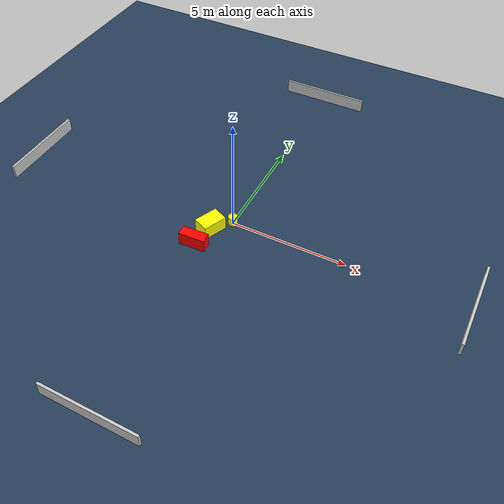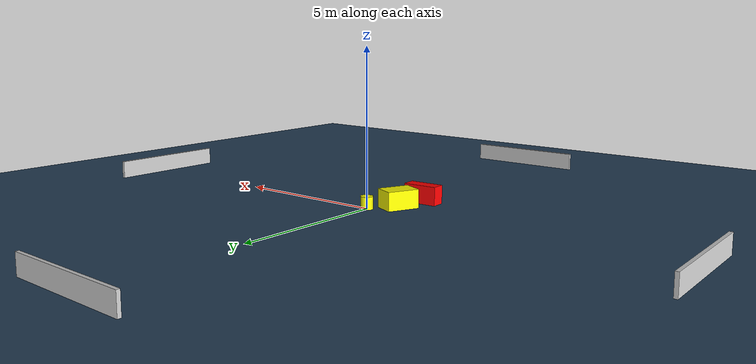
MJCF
<?xml version="1.0" ?>
<mujoco model="generated_environment">
  <option timestep="0.01" integrator="RK4" cone="elliptic"/>
  <default>
    <geom density="1"/>
  </default>
  <asset>
    <texture builtin="gradient" height="3072" name="skybox" rgb1="0.3 0.5 0.7" rgb2="0 0 0" type="skybox" width="512"/>
    <texture builtin="checker" height="300" name="groundplane" rgb1="0.2 0.3 0.4" rgb2="0.1 0.2 0.3" type="2d" width="300"/>
    <material name="groundplane" reflectance="0.2" texrepeat="5 5" texture="groundplane"/>
  </asset>
  <worldbody>
    <light dir="0 0 -1" directional="true" pos="0 0 1.5"/>
    <geom condim="3" friction="0.5 0.005 0.001" material="groundplane" name="floor" pos="0 0 0" size="0 0 0.05" type="plane"/>
    <body name="walls">
      <geom name="wall_1" condim="4" pos="-10.0 0.0 0.3" rgba="0.800000011920929 0.800000011920929 0.800000011920929 1.0" size="0.05 2.0 0.3" type="box"/>
      <geom name="wall_2" condim="4" pos="10.0 0.0 0.3" rgba="0.800000011920929 0.800000011920929 0.800000011920929 1.0" size="0.05 2.0 0.3" type="box"/>
      <geom name="wall_3" condim="4" pos="0.0 -10.0 0.3" rgba="0.800000011920929 0.800000011920929 0.800000011920929 1.0" size="2.0 0.05 0.3" type="box"/>
      <geom name="wall_4" condim="4" pos="0.0 10.0 0.3" rgba="0.800000011920929 0.800000011920929 0.800000011920929 1.0" size="2.0 0.05 0.3" type="box"/>
    </body>
    <body name="robot">
      <joint name="joint_x" type="slide" pos="0 0 0" axis="1 0 0"/>
      <joint name="joint_y" type="slide" pos="0 0 0" axis="0 1 0"/>
      <geom name="robot" type="cylinder" pos="0.0 0.0 0.2" size="0.2 0.2 0.0" mass="5.0" friction="1.0 0.005 0.0001" condim="4" rgba="1.0 1.0 0.0 1.0"/>
    </body>
    <body name="obstacle_1_movable">
      <geom name="obstacle_1_movable" condim="4" pos="-0.664225048174717 -0.7268080384876388 0.3" euler="0 0 156.34358126261824" friction="0.0 0.005 0.001" rgba="1.0 1.0 0.0 1.0" size="0.3444375629446699 0.5267139563310147 0.3" type="box" mass="0.1"/>
      <joint type="free"/>
    </body>
    <body name="obstacle_2_static">
      <geom name="obstacle_2_static" condim="4" pos="-0.852201749478895 -1.785157239242814 0.3" euler="0 0 3.0380310037856972" friction="0.0 0.005 0.001" rgba="1.0 0.0 0.0 1.0" size="0.5603610421714329 0.22631270404132064 0.3" type="box"/>
    </body>
  </worldbody>
  <actuator>
    <motor name="actuator_x" joint="joint_x" gear="1" ctrlrange="-1 1"/>
    <motor name="actuator_y" joint="joint_y" gear="1" ctrlrange="-1 1"/>
  </actuator>
</mujoco>
